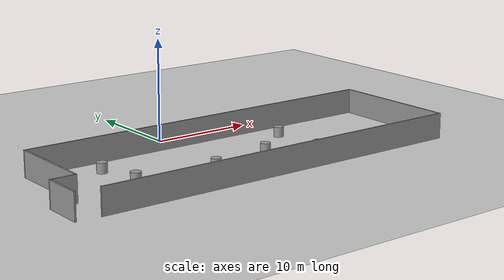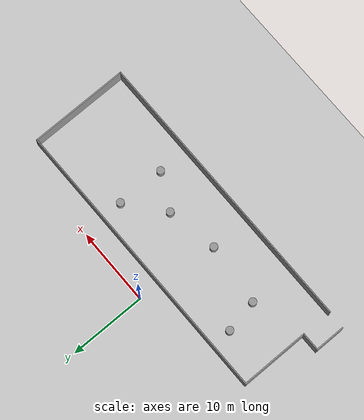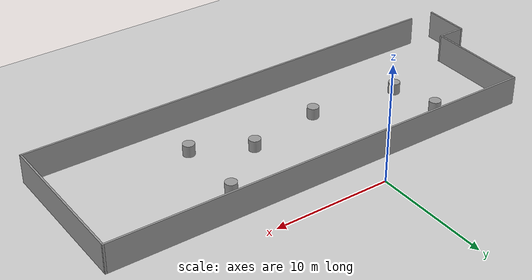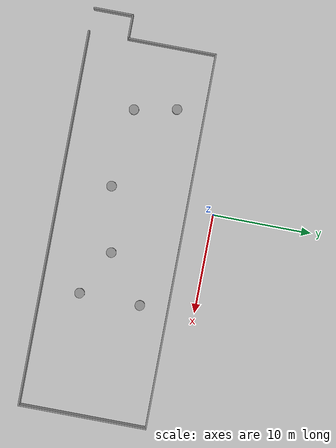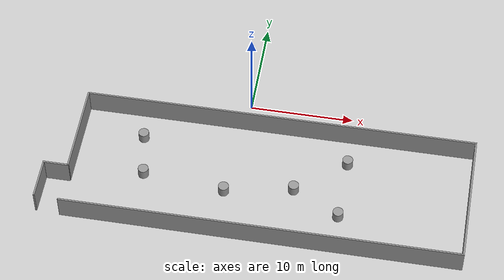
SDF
<sdf version="1.7">
 <world name="default">
  <light name="sun" type="directional">
   <pose>0 0 10 0 -0 0</pose>
   <diffuse>0.8 0.8 0.8 1</diffuse>
   <specular>0.2 0.2 0.2 1</specular>
   <attenuation>
    <range>1000</range>
    <constant>0.9</constant>
    <linear>0.01</linear>
    <quadratic>0.001</quadratic>
   </attenuation>
   <direction>-0.5 0.1 -0.9</direction>
   <spot><inner_angle>0</inner_angle><outer_angle>0</outer_angle><falloff>0</falloff></spot>
  </light>
  <model name="ground_plane">
   <static>1</static>
   <link name="link">
    <collision name="collision">
     <geometry><plane><normal>0 0 1</normal><size>100 100</size></plane></geometry>
     <surface><friction><ode><mu>100</mu><mu2>50</mu2></ode></friction></surface>
    </collision>
    <visual name="visual">
     <cast_shadows>0</cast_shadows>
     <geometry><plane><normal>0 0 1</normal><size>100 100</size></plane></geometry>
     <material>
      <script><uri>file://media/materials/scripts/gazebo.material</uri><name>Gazebo/Grey</name></script>
     </material>
    </visual>
   </link>
  </model>
  <gravity>0 0 -9.8</gravity>
  <magnetic_field>6e-06 2.3e-05 -4.2e-05</magnetic_field>
  <atmosphere type="adiabatic"/>
  <physics type="ode">
   <max_step_size>0.001</max_step_size>
   <real_time_factor>1</real_time_factor>
   <real_time_update_rate>1000</real_time_update_rate>
  </physics>
  <scene><ambient>0.4 0.4 0.4 1</ambient><background>0.7 0.7 0.7 1</background><shadows>1</shadows></scene>
  <spherical_coordinates>
   <surface_model>EARTH_WGS84</surface_model>
   <latitude_deg>0</latitude_deg>
   <longitude_deg>0</longitude_deg>
   <elevation>0</elevation>
   <heading_deg>0</heading_deg>
  </spherical_coordinates>
  <model name="room1">
   <pose>2.04714 -7.80072 0 0 -0 0</pose>
   <link name="Wall_43">
    <collision name="Wall_43_Collision">
     <geometry><box><size>38 0.15 2.5</size></box></geometry>
     <pose>0 0 1.25 0 -0 0</pose>
    </collision>
    <visual name="Wall_43_Visual">
     <pose>0 0 1.25 0 -0 0</pose>
     <geometry><box><size>38 0.15 2.5</size></box></geometry>
     <material>
      <script><uri>file://media/materials/scripts/gazebo.material</uri><name>Gazebo/Grey</name></script>
      <ambient>1 1 1 1</ambient>
     </material>
     <meta><layer>0</layer></meta>
    </visual>
    <pose>1.175 -7.72572 0 0 -0 0</pose>
   </link>
   <link name="Wall_44">
    <collision name="Wall_44_Collision">
     <geometry><box><size>13 0.15 2.5</size></box></geometry>
     <pose>0 0 1.25 0 -0 0</pose>
    </collision>
    <visual name="Wall_44_Visual">
     <pose>0 0 1.25 0 -0 0</pose>
     <geometry><box><size>13 0.15 2.5</size></box></geometry>
     <material>
      <script><uri>file://media/materials/scripts/gazebo.material</uri><name>Gazebo/Grey</name></script>
      <ambient>1 1 1 1</ambient>
     </material>
     <meta><layer>0</layer></meta>
    </visual>
    <pose>20.1 -1.30071 0 0 -0 1.5708</pose>
   </link>
   <link name="Wall_45">
    <collision name="Wall_45_Collision">
     <geometry><box><size>38 0.15 2.5</size></box></geometry>
     <pose>0 0 1.25 0 -0 0</pose>
    </collision>
    <visual name="Wall_45_Visual">
     <pose>0 0 1.25 0 -0 0</pose>
     <geometry><box><size>38 0.15 2.5</size></box></geometry>
     <material>
      <script><uri>file://media/materials/scripts/gazebo.material</uri><name>Gazebo/Grey</name></script>
      <ambient>1 1 1 1</ambient>
     </material>
     <meta><layer>0</layer></meta>
    </visual>
    <pose>1.175 5.12429 0 0 -0 3.14159</pose>
   </link>
   <link name="Wall_46">
    <collision name="Wall_46_Collision">
     <geometry><box><size>9 0.15 2.5</size></box></geometry>
     <pose>0 0 1.25 0 -0 0</pose>
    </collision>
    <visual name="Wall_46_Visual">
     <pose>0 0 1.25 0 -0 0</pose>
     <geometry><box><size>9 0.15 2.5</size></box></geometry>
     <material>
      <script><uri>file://media/materials/scripts/gazebo.material</uri><name>Gazebo/Grey</name></script>
      <ambient>1 1 1 1</ambient>
     </material>
     <meta><layer>0</layer></meta>
    </visual>
    <pose>-17.75 0.699286 0 0 -0 -1.5708</pose>
   </link>
   <link name="Wall_47">
    <collision name="Wall_47_Collision">
     <geometry><box><size>2.5 0.15 2.5</size></box></geometry>
     <pose>0 0 1.25 0 -0 0</pose>
    </collision>
    <visual name="Wall_47_Visual">
     <pose>0 0 1.25 0 -0 0</pose>
     <geometry><box><size>2.5 0.15 2.5</size></box></geometry>
     <material>
      <script><uri>file://media/materials/scripts/gazebo.material</uri><name>Gazebo/Grey</name></script>
      <ambient>1 1 1 1</ambient>
     </material>
     <meta><layer>0</layer></meta>
    </visual>
    <pose>-18.925 -3.72572 0 0 -0 3.14159</pose>
   </link>
   <link name="Wall_48">
    <collision name="Wall_48_Collision">
     <geometry><box><size>4 0.15 2.5</size></box></geometry>
     <pose>0 0 1.25 0 -0 0</pose>
    </collision>
    <visual name="Wall_48_Visual">
     <pose>0 0 1.25 0 -0 0</pose>
     <geometry><box><size>4 0.15 2.5</size></box></geometry>
     <material>
      <script><uri>file://media/materials/scripts/gazebo.material</uri><name>Gazebo/Grey</name></script>
      <ambient>1 1 1 1</ambient>
     </material>
     <meta><layer>0</layer></meta>
    </visual>
    <pose>-20.1 -5.65071 0 0 -0 -1.5708</pose>
   </link>
   <static>1</static>
  </model>
  <model name="unit_cylinder">
   <pose>-8.89951 -9.70478 0.499998 3e-06 -4e-06 0</pose>
   <link name="link">
    <inertial>
     <mass>1</mass>
     <inertia><ixx>0.145833</ixx><ixy>0</ixy><ixz>0</ixz><iyy>0.145833</iyy><iyz>0</iyz><izz>0.125</izz></inertia>
    </inertial>
    <collision name="collision">
     <geometry><cylinder><radius>0.5</radius><length>1</length></cylinder></geometry>
    </collision>
    <visual name="visual">
     <geometry><cylinder><radius>0.5</radius><length>1</length></cylinder></geometry>
     <material>
      <script><name>Gazebo/Grey</name><uri>file://media/materials/scripts/gazebo.material</uri></script>
     </material>
    </visual>
   </link>
  </model>
  <model name="unit_cylinder_0">
   <pose>-0.973019 -10.4923 0.499992 -3e-06 -4e-06 -0</pose>
   <link name="link">
    <inertial>
     <mass>1</mass>
     <inertia><ixx>0.145833</ixx><ixy>0</ixy><ixz>0</ixz><iyy>0.145833</iyy><iyz>0</iyz><izz>0.125</izz></inertia>
    </inertial>
    <collision name="collision">
     <geometry><cylinder><radius>0.5</radius><length>1</length></cylinder></geometry>
    </collision>
    <visual name="visual">
     <geometry><cylinder><radius>0.5</radius><length>1</length></cylinder></geometry>
     <material>
      <script><name>Gazebo/Grey</name><uri>file://media/materials/scripts/gazebo.material</uri></script>
     </material>
    </visual>
   </link>
  </model>
  <model name="unit_cylinder_1">
   <pose>-9.71169 -5.47525 0.499993 -3e-06 -3e-06 0</pose>
   <link name="link">
    <inertial>
     <mass>1</mass>
     <inertia><ixx>0.145833</ixx><ixy>0</ixy><ixz>0</ixz><iyy>0.145833</iyy><iyz>0</iyz><izz>0.125</izz></inertia>
    </inertial>
    <collision name="collision">
     <geometry><cylinder><radius>0.5</radius><length>1</length></cylinder></geometry>
    </collision>
    <visual name="visual">
     <geometry><cylinder><radius>0.5</radius><length>1</length></cylinder></geometry>
     <material>
      <script><name>Gazebo/Grey</name><uri>file://media/materials/scripts/gazebo.material</uri></script>
     </material>
    </visual>
   </link>
  </model>
  <model name="unit_cylinder_2">
   <pose>10.2401 -5.51475 0.499997 3e-06 4e-06 -0</pose>
   <link name="link">
    <inertial>
     <mass>1</mass>
     <inertia><ixx>0.145833</ixx><ixy>0</ixy><ixz>0</ixz><iyy>0.145833</iyy><iyz>0</iyz><izz>0.125</izz></inertia>
    </inertial>
    <collision name="collision">
     <geometry><cylinder><radius>0.5</radius><length>1</length></cylinder></geometry>
    </collision>
    <visual name="visual">
     <geometry><cylinder><radius>0.5</radius><length>1</length></cylinder></geometry>
     <material>
      <script><name>Gazebo/Grey</name><uri>file://media/materials/scripts/gazebo.material</uri></script>
     </material>
    </visual>
   </link>
  </model>
  <model name="unit_cylinder_3">
   <pose>10.1372 -11.6595 0.499993 -3e-06 -4e-06 -0</pose>
   <link name="link">
    <inertial>
     <mass>1</mass>
     <inertia><ixx>0.145833</ixx><ixy>0</ixy><ixz>0</ixz><iyy>0.145833</iyy><iyz>0</iyz><izz>0.125</izz></inertia>
    </inertial>
    <collision name="collision">
     <geometry><cylinder><radius>0.5</radius><length>1</length></cylinder></geometry>
    </collision>
    <visual name="visual">
     <geometry><cylinder><radius>0.5</radius><length>1</length></cylinder></geometry>
     <material>
      <script><name>Gazebo/Grey</name><uri>file://media/materials/scripts/gazebo.material</uri></script>
     </material>
    </visual>
   </link>
  </model>
  <model name="unit_cylinder_4">
   <pose>5.5664 -9.29622 0.499997 3e-06 4e-06 -0</pose>
   <link name="link">
    <inertial>
     <mass>1</mass>
     <inertia><ixx>0.145833</ixx><ixy>0</ixy><ixz>0</ixz><iyy>0.145833</iyy><iyz>0</iyz><izz>0.125</izz></inertia>
    </inertial>
    <collision name="collision">
     <geometry><cylinder><radius>0.5</radius><length>1</length></cylinder></geometry>
    </collision>
    <visual name="visual">
     <geometry><cylinder><radius>0.5</radius><length>1</length></cylinder></geometry>
     <material>
      <script><name>Gazebo/Grey</name><uri>file://media/materials/scripts/gazebo.material</uri></script>
     </material>
    </visual>
   </link>
  </model>
 </world>
</sdf>
